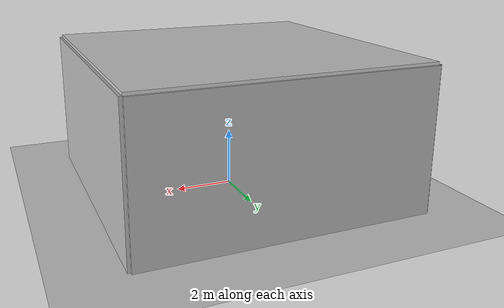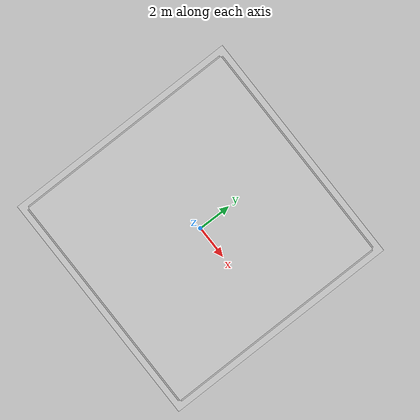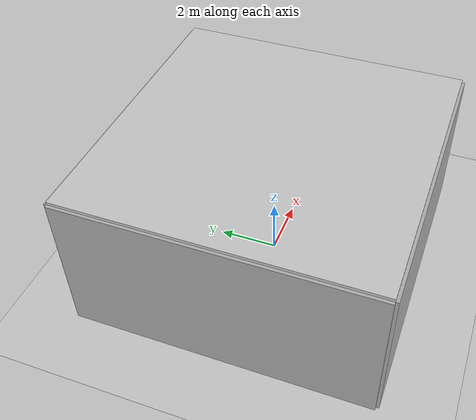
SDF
<?xml version="1.0" ?>
<sdf version="1.7">
  <world name="basic_environment">
    <!-- Include the default sun -->
    <include>
      <uri>model://sun</uri>
    </include>

    <!-- Include the default ground plane -->
    <include>
      <uri>model://ground_plane</uri>
    </include>

    <!-- Create a simple room with walls -->
    <model name="room_walls">
      <!-- Back wall -->
      <link name="back_wall">
        <pose>0 5 2.5 0 0 0</pose>
        <visual name="back_wall_visual">
          <geometry>
            <box>
              <size>10 0.2 5</size>
            </box>
          </geometry>
          <material>
            <ambient>0.7 0.7 0.7 1</ambient>
            <diffuse>0.7 0.7 0.7 1</diffuse>
            <specular>0.7 0.7 0.7 1</specular>
          </material>
        </visual>
        <collision name="back_wall_collision">
          <geometry>
            <box>
              <size>10 0.2 5</size>
            </box>
          </geometry>
        </collision>
        <inertial>
          <mass>100</mass>
          <inertia>
            <ixx>100</ixx>
            <ixy>0</ixy>
            <ixz>0</ixz>
            <iyy>100</iyy>
            <iyz>0</iyz>
            <izz>100</izz>
          </inertia>
        </inertial>
      </link>

      <!-- Front wall -->
      <link name="front_wall">
        <pose>0 -5 2.5 0 0 3.14159</pose>
        <visual name="front_wall_visual">
          <geometry>
            <box>
              <size>10 0.2 5</size>
            </box>
          </geometry>
          <material>
            <ambient>0.7 0.7 0.7 1</ambient>
            <diffuse>0.7 0.7 0.7 1</diffuse>
            <specular>0.7 0.7 0.7 1</specular>
          </material>
        </visual>
        <collision name="front_wall_collision">
          <geometry>
            <box>
              <size>10 0.2 5</size>
            </box>
          </geometry>
        </collision>
        <inertial>
          <mass>100</mass>
          <inertia>
            <ixx>100</ixx>
            <ixy>0</ixy>
            <ixz>0</ixz>
            <iyy>100</iyy>
            <iyz>0</iyz>
            <izz>100</izz>
          </inertia>
        </inertial>
      </link>

      <!-- Left wall -->
      <link name="left_wall">
        <pose>-5 0 2.5 0 0 1.5708</pose>
        <visual name="left_wall_visual">
          <geometry>
            <box>
              <size>10 0.2 5</size>
            </box>
          </geometry>
          <material>
            <ambient>0.7 0.7 0.7 1</ambient>
            <diffuse>0.7 0.7 0.7 1</diffuse>
            <specular>0.7 0.7 0.7 1</specular>
          </material>
        </visual>
        <collision name="left_wall_collision">
          <geometry>
            <box>
              <size>10 0.2 5</size>
            </box>
          </geometry>
        </collision>
        <inertial>
          <mass>100</mass>
          <inertia>
            <ixx>100</ixx>
            <ixy>0</ixy>
            <ixz>0</ixz>
            <iyy>100</iyy>
            <iyz>0</iyz>
            <izz>100</izz>
          </inertia>
        </inertial>
      </link>

      <!-- Right wall -->
      <link name="right_wall">
        <pose>5 0 2.5 0 0 -1.5708</pose>
        <visual name="right_wall_visual">
          <geometry>
            <box>
              <size>10 0.2 5</size>
            </box>
          </geometry>
          <material>
            <ambient>0.7 0.7 0.7 1</ambient>
            <diffuse>0.7 0.7 0.7 1</diffuse>
            <specular>0.7 0.7 0.7 1</specular>
          </material>
        </visual>
        <collision name="right_wall_collision">
          <geometry>
            <box>
              <size>10 0.2 5</size>
            </box>
          </geometry>
        </collision>
        <inertial>
          <mass>100</mass>
          <inertia>
            <ixx>100</ixx>
            <ixy>0</ixy>
            <ixz>0</ixz>
            <iyy>100</iyy>
            <iyz>0</iyz>
            <izz>100</izz>
          </inertia>
        </inertial>
      </link>

      <!-- Ceiling -->
      <link name="ceiling">
        <pose>0 0 5 0 0 0</pose>
        <visual name="ceiling_visual">
          <geometry>
            <box>
              <size>10 10 0.2</size>
            </box>
          </geometry>
          <material>
            <ambient>0.8 0.8 0.8 1</ambient>
            <diffuse>0.8 0.8 0.8 1</diffuse>
            <specular>0.8 0.8 0.8 1</specular>
          </material>
        </visual>
        <collision name="ceiling_collision">
          <geometry>
            <box>
              <size>10 10 0.2</size>
            </box>
          </geometry>
        </collision>
        <inertial>
          <mass>100</mass>
          <inertia>
            <ixx>100</ixx>
            <ixy>0</ixy>
            <ixz>0</ixz>
            <iyy>100</iyy>
            <iyz>0</iyz>
            <izz>100</izz>
          </inertia>
        </inertial>
      </link>
    </model>

    <!-- Add some simple furniture -->
    <model name="table">
      <pose>2 2 0.4 0 0 0</pose>
      <link name="table_base">
        <visual name="table_visual">
          <geometry>
            <box>
              <size>1.0 0.8 0.8</size>
            </box>
          </geometry>
          <material>
            <ambient>0.4 0.2 0 1</ambient>
            <diffuse>0.8 0.4 0 1</diffuse>
            <specular>0.8 0.4 0 1</specular>
          </material>
        </visual>
        <collision name="table_collision">
          <geometry>
            <box>
              <size>1.0 0.8 0.8</size>
            </box>
          </geometry>
        </collision>
        <inertial>
          <mass>10</mass>
          <inertia>
            <ixx>1</ixx>
            <ixy>0</ixy>
            <ixz>0</ixz>
            <iyy>1</iyy>
            <iyz>0</iyz>
            <izz>1</izz>
          </inertia>
        </inertial>
      </link>
    </model>

    <!-- Add a simple obstacle -->
    <model name="obstacle">
      <pose>-2 -2 0.5 0 0 0</pose>
      <link name="obstacle_link">
        <visual name="obstacle_visual">
          <geometry>
            <cylinder>
              <radius>0.5</radius>
              <length>1.0</length>
            </cylinder>
          </geometry>
          <material>
            <ambient>0 0.5 0.5 1</ambient>
            <diffuse>0 0.8 0.8 1</diffuse>
            <specular>0 0.8 0.8 1</specular>
          </material>
        </visual>
        <collision name="obstacle_collision">
          <geometry>
            <cylinder>
              <radius>0.5</radius>
              <length>1.0</length>
            </cylinder>
          </geometry>
        </collision>
        <inertial>
          <mass>5</mass>
          <inertia>
            <ixx>1</ixx>
            <ixy>0</ixy>
            <ixz>0</ixz>
            <iyy>1</iyy>
            <iyz>0</iyz>
            <izz>1</izz>
          </inertia>
        </inertial>
      </link>
    </model>

    <!-- Physics configuration -->
    <physics name="default_physics" type="ode">
      <gravity>0 0 -9.8</gravity>
      <ode>
        <solver>
          <type>quick</type>
          <iters>10</iters>
          <sor>1.0</sor>
        </solver>
        <constraints>
          <cfm>0.0</cfm>
          <erp>0.2</erp>
          <contact_max_correcting_vel>100.0</contact_max_correcting_vel>
          <contact_surface_layer>0.001</contact_surface_layer>
        </constraints>
      </ode>
    </physics>
  </world>
</sdf>
